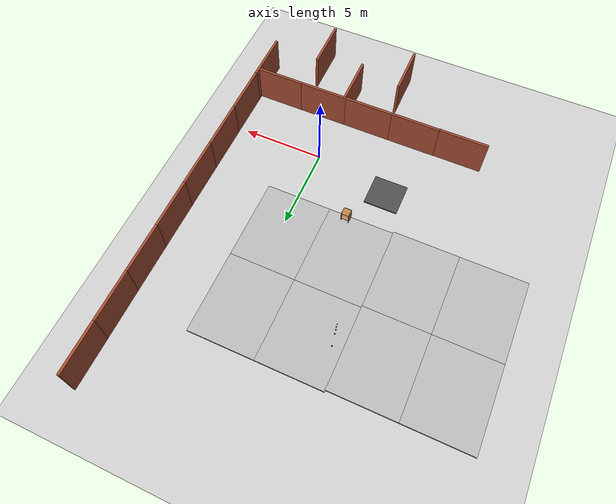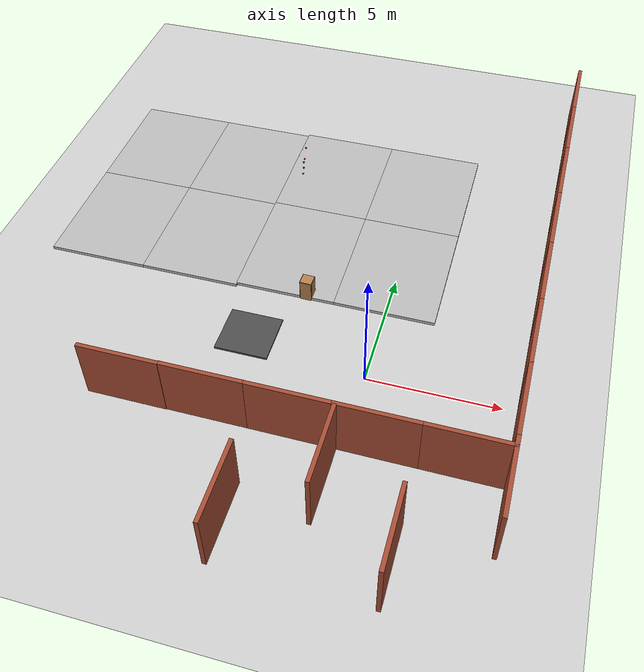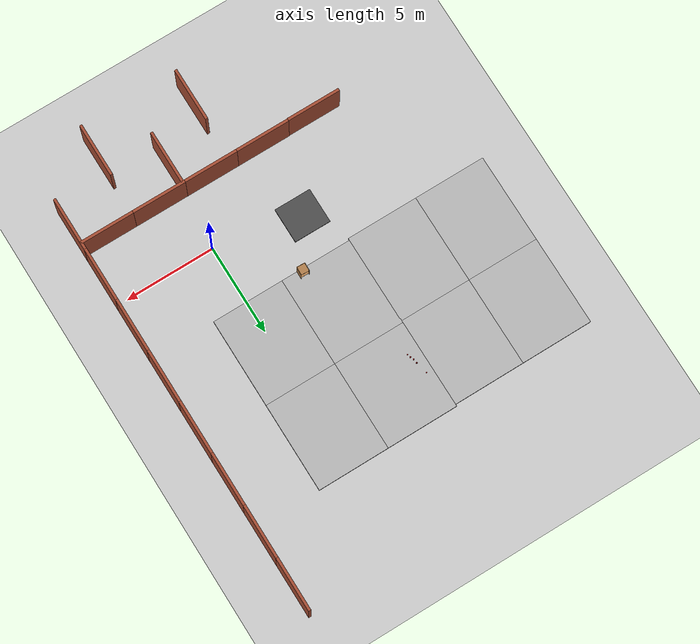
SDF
<sdf version="1.6">
 <world name="default">
  <scene>
   <sky><clouds><speed>5</speed></clouds></sky>
   <ambient>0.4 0.4 0.4 1</ambient>
   <background>0.7 0.7 0.7 1</background>
   <shadows>1</shadows>
  </scene>
  <light name="sun" type="directional">
   <pose>0 0 10 0 -0 0</pose>
   <diffuse>0.8 0.8 0.8 1</diffuse>
   <specular>0.2 0.2 0.2 1</specular>
   <attenuation>
    <range>1000</range>
    <constant>0.9</constant>
    <linear>0.01</linear>
    <quadratic>0.001</quadratic>
   </attenuation>
   <direction>-0.5 0.1 -0.9</direction>
  </light>
  <model name="ground_plane">
   <static>1</static>
   <link name="link">
    <collision name="collision">
     <geometry><plane><normal>0 0 1</normal><size>100 100</size></plane></geometry>
     <surface><friction><ode><mu>100</mu><mu2>50</mu2></ode></friction></surface>
    </collision>
    <visual name="visual">
     <cast_shadows>0</cast_shadows>
     <geometry><plane><normal>0 0 1</normal><size>100 100</size></plane></geometry>
     <material>
      <script><uri>file://media/materials/scripts/gazebo.material</uri><name>Gazebo/Grey</name></script>
     </material>
    </visual>
   </link>
  </model>
  <gravity>0 0 -9.8</gravity>
  <magnetic_field>6e-06 2.3e-05 -4.2e-05</magnetic_field>
  <atmosphere type="adiabatic"/>
  <physics name="default_physics" default="0" type="ode">
   <max_step_size>0.01</max_step_size>
   <real_time_factor>1</real_time_factor>
   <real_time_update_rate>100</real_time_update_rate>
  </physics>
  <scene><ambient>0.4 0.4 0.4 1</ambient><background>0.7 0.7 0.7 1</background><shadows>1</shadows></scene>
  <spherical_coordinates>
   <surface_model>EARTH_WGS84</surface_model>
   <latitude_deg>0</latitude_deg>
   <longitude_deg>0</longitude_deg>
   <elevation>0</elevation>
   <heading_deg>0</heading_deg>
  </spherical_coordinates>
  <model name="wall_brick_3m">
   <pose>2.53536 -6.79833 0 0 -0 1.57</pose>
   <link name="Wall_2">
    <collision name="Wall_2_Collision">
     <geometry><box><size>3 0.15 2.5</size></box></geometry>
     <pose>0 0 1.25 0 -0 0</pose>
    </collision>
    <visual name="Wall_2_Visual">
     <pose>0 0 1.25 0 -0 0</pose>
     <geometry><box><size>3 0.15 2.5</size></box></geometry>
     <material>
      <script><uri>file://media/materials/scripts/gazebo.material</uri><name>Gazebo/Bricks</name></script>
      <ambient>1 1 1 1</ambient>
     </material>
     <meta><layer>0</layer></meta>
    </visual>
   </link>
   <static>1</static>
  </model>
  <model name="wall_brick_3m_clone">
   <pose>-0.265232 -4.62667 0 0 -0 1.57</pose>
   <link name="Wall_2">
    <collision name="Wall_2_Collision">
     <geometry><box><size>3 0.15 2.5</size></box></geometry>
     <pose>0 0 1.25 0 -0 0</pose>
    </collision>
    <visual name="Wall_2_Visual">
     <pose>0 0 1.25 0 -0 0</pose>
     <geometry><box><size>3 0.15 2.5</size></box></geometry>
     <material>
      <script><uri>file://media/materials/scripts/gazebo.material</uri><name>Gazebo/Bricks</name></script>
      <ambient>1 1 1 1</ambient>
     </material>
     <meta><layer>0</layer></meta>
    </visual>
   </link>
   <static>1</static>
  </model>
  <model name="wall_brick_3m_clone_clone">
   <pose>-2.96784 -6.78032 0 0 -0 1.57</pose>
   <link name="Wall_2">
    <collision name="Wall_2_Collision">
     <geometry><box><size>3 0.15 2.5</size></box></geometry>
     <pose>0 0 1.25 0 -0 0</pose>
    </collision>
    <visual name="Wall_2_Visual">
     <pose>0 0 1.25 0 -0 0</pose>
     <geometry><box><size>3 0.15 2.5</size></box></geometry>
     <material>
      <script><uri>file://media/materials/scripts/gazebo.material</uri><name>Gazebo/Bricks</name></script>
      <ambient>1 1 1 1</ambient>
     </material>
     <meta><layer>0</layer></meta>
    </visual>
   </link>
   <static>1</static>
  </model>
  <model name="wall_brick_3m_clone_0">
   <pose>5.57817 -4.2114 0 0 -0 1.57</pose>
   <link name="Wall_2">
    <collision name="Wall_2_Collision">
     <geometry><box><size>3 0.15 2.5</size></box></geometry>
     <pose>0 0 1.25 0 -0 0</pose>
    </collision>
    <visual name="Wall_2_Visual">
     <pose>0 0 1.25 0 -0 0</pose>
     <geometry><box><size>3 0.15 2.5</size></box></geometry>
     <material>
      <script><uri>file://media/materials/scripts/gazebo.material</uri><name>Gazebo/Bricks</name></script>
      <ambient>1 1 1 1</ambient>
     </material>
     <meta><layer>0</layer></meta>
    </visual>
   </link>
   <static>1</static>
  </model>
  <model name="wall_brick_3m_clone_1">
   <pose>4.12513 -3.1 0 0 -0 0</pose>
   <link name="Wall_2">
    <collision name="Wall_2_Collision">
     <geometry><box><size>3 0.15 2.5</size></box></geometry>
     <pose>0 0 1.25 0 -0 0</pose>
    </collision>
    <visual name="Wall_2_Visual">
     <pose>0 0 1.25 0 -0 0</pose>
     <geometry><box><size>3 0.15 2.5</size></box></geometry>
     <material>
      <script><uri>file://media/materials/scripts/gazebo.material</uri><name>Gazebo/Bricks</name></script>
      <ambient>1 1 1 1</ambient>
     </material>
     <meta><layer>0</layer></meta>
    </visual>
   </link>
   <static>1</static>
  </model>
  <model name="wall_brick_3m_clone_1_clone">
   <pose>1.12513 -3.1 0 0 -0 0</pose>
   <link name="Wall_2">
    <collision name="Wall_2_Collision">
     <geometry><box><size>3 0.15 2.5</size></box></geometry>
     <pose>0 0 1.25 0 -0 0</pose>
    </collision>
    <visual name="Wall_2_Visual">
     <pose>0 0 1.25 0 -0 0</pose>
     <geometry><box><size>3 0.15 2.5</size></box></geometry>
     <material>
      <script><uri>file://media/materials/scripts/gazebo.material</uri><name>Gazebo/Bricks</name></script>
      <ambient>1 1 1 1</ambient>
     </material>
     <meta><layer>0</layer></meta>
    </visual>
   </link>
   <static>1</static>
  </model>
  <model name="wall_brick_3m_clone_1_clone_0">
   <pose>-1.87487 -3.1 0 0 -0 0</pose>
   <link name="Wall_2">
    <collision name="Wall_2_Collision">
     <geometry><box><size>3 0.15 2.5</size></box></geometry>
     <pose>0 0 1.25 0 -0 0</pose>
    </collision>
    <visual name="Wall_2_Visual">
     <pose>0 0 1.25 0 -0 0</pose>
     <geometry><box><size>3 0.15 2.5</size></box></geometry>
     <material>
      <script><uri>file://media/materials/scripts/gazebo.material</uri><name>Gazebo/Bricks</name></script>
      <ambient>1 1 1 1</ambient>
     </material>
     <meta><layer>0</layer></meta>
    </visual>
   </link>
   <static>1</static>
  </model>
  <model name="wall_brick_3m_clone_1_clone_1">
   <pose>-4.87487 -3.1 0 0 -0 0</pose>
   <link name="Wall_2">
    <collision name="Wall_2_Collision">
     <geometry><box><size>3 0.15 2.5</size></box></geometry>
     <pose>0 0 1.25 0 -0 0</pose>
    </collision>
    <visual name="Wall_2_Visual">
     <pose>0 0 1.25 0 -0 0</pose>
     <geometry><box><size>3 0.15 2.5</size></box></geometry>
     <material>
      <script><uri>file://media/materials/scripts/gazebo.material</uri><name>Gazebo/Bricks</name></script>
      <ambient>1 1 1 1</ambient>
     </material>
     <meta><layer>0</layer></meta>
    </visual>
   </link>
   <static>1</static>
  </model>
  <model name="wall_brick_3m_clone_1_clone_1_clone">
   <pose>-7.87487 -3.11682 0 0 -0 0</pose>
   <link name="Wall_2">
    <collision name="Wall_2_Collision">
     <geometry><box><size>3 0.15 2.5</size></box></geometry>
     <pose>0 0 1.25 0 -0 0</pose>
    </collision>
    <visual name="Wall_2_Visual">
     <pose>0 0 1.25 0 -0 0</pose>
     <geometry><box><size>3 0.15 2.5</size></box></geometry>
     <material>
      <script><uri>file://media/materials/scripts/gazebo.material</uri><name>Gazebo/Bricks</name></script>
      <ambient>1 1 1 1</ambient>
     </material>
     <meta><layer>0</layer></meta>
    </visual>
   </link>
   <static>1</static>
  </model>
  <model name="wall_brick_3m_clone_0_clone">
   <pose>5.57817 -1.21128 0 0 -0 1.57</pose>
   <link name="Wall_2">
    <collision name="Wall_2_Collision">
     <geometry><box><size>3 0.15 2.5</size></box></geometry>
     <pose>0 0 1.25 0 -0 0</pose>
    </collision>
    <visual name="Wall_2_Visual">
     <pose>0 0 1.25 0 -0 0</pose>
     <geometry><box><size>3 0.15 2.5</size></box></geometry>
     <material>
      <script><uri>file://media/materials/scripts/gazebo.material</uri><name>Gazebo/Bricks</name></script>
      <ambient>1 1 1 1</ambient>
     </material>
     <meta><layer>0</layer></meta>
    </visual>
   </link>
   <static>1</static>
  </model>
  <model name="wall_brick_3m_clone_0_clone_clone">
   <pose>5.57817 1.78884 0 0 -0 1.57</pose>
   <link name="Wall_2">
    <collision name="Wall_2_Collision">
     <geometry><box><size>3 0.15 2.5</size></box></geometry>
     <pose>0 0 1.25 0 -0 0</pose>
    </collision>
    <visual name="Wall_2_Visual">
     <pose>0 0 1.25 0 -0 0</pose>
     <geometry><box><size>3 0.15 2.5</size></box></geometry>
     <material>
      <script><uri>file://media/materials/scripts/gazebo.material</uri><name>Gazebo/Bricks</name></script>
      <ambient>1 1 1 1</ambient>
     </material>
     <meta><layer>0</layer></meta>
    </visual>
   </link>
   <static>1</static>
  </model>
  <model name="wall_brick_3m_clone_0_clone_clone_0">
   <pose>5.57817 4.78896 0 0 -0 1.57</pose>
   <link name="Wall_2">
    <collision name="Wall_2_Collision">
     <geometry><box><size>3 0.15 2.5</size></box></geometry>
     <pose>0 0 1.25 0 -0 0</pose>
    </collision>
    <visual name="Wall_2_Visual">
     <pose>0 0 1.25 0 -0 0</pose>
     <geometry><box><size>3 0.15 2.5</size></box></geometry>
     <material>
      <script><uri>file://media/materials/scripts/gazebo.material</uri><name>Gazebo/Bricks</name></script>
      <ambient>1 1 1 1</ambient>
     </material>
     <meta><layer>0</layer></meta>
    </visual>
   </link>
   <static>1</static>
  </model>
  <model name="wall_brick_3m_clone_0_clone_clone_0_clone">
   <pose>5.57817 7.78908 0 0 -0 1.57</pose>
   <link name="Wall_2">
    <collision name="Wall_2_Collision">
     <geometry><box><size>3 0.15 2.5</size></box></geometry>
     <pose>0 0 1.25 0 -0 0</pose>
    </collision>
    <visual name="Wall_2_Visual">
     <pose>0 0 1.25 0 -0 0</pose>
     <geometry><box><size>3 0.15 2.5</size></box></geometry>
     <material>
      <script><uri>file://media/materials/scripts/gazebo.material</uri><name>Gazebo/Bricks</name></script>
      <ambient>1 1 1 1</ambient>
     </material>
     <meta><layer>0</layer></meta>
    </visual>
   </link>
   <static>1</static>
  </model>
  <model name="wall_brick_3m_clone_0_clone_clone_0_clone_clone">
   <pose>5.57817 10.7892 0 0 -0 1.57</pose>
   <link name="Wall_2">
    <collision name="Wall_2_Collision">
     <geometry><box><size>3 0.15 2.5</size></box></geometry>
     <pose>0 0 1.25 0 -0 0</pose>
    </collision>
    <visual name="Wall_2_Visual">
     <pose>0 0 1.25 0 -0 0</pose>
     <geometry><box><size>3 0.15 2.5</size></box></geometry>
     <material>
      <script><uri>file://media/materials/scripts/gazebo.material</uri><name>Gazebo/Bricks</name></script>
      <ambient>1 1 1 1</ambient>
     </material>
     <meta><layer>0</layer></meta>
    </visual>
   </link>
   <static>1</static>
  </model>
  <model name="wall_brick_3m_clone_0_clone_clone_0_clone_clone_0">
   <pose>5.57817 13.7893 0 0 -0 1.57</pose>
   <link name="Wall_2">
    <collision name="Wall_2_Collision">
     <geometry><box><size>3 0.15 2.5</size></box></geometry>
     <pose>0 0 1.25 0 -0 0</pose>
    </collision>
    <visual name="Wall_2_Visual">
     <pose>0 0 1.25 0 -0 0</pose>
     <geometry><box><size>3 0.15 2.5</size></box></geometry>
     <material>
      <script><uri>file://media/materials/scripts/gazebo.material</uri><name>Gazebo/Bricks</name></script>
      <ambient>1 1 1 1</ambient>
     </material>
     <meta><layer>0</layer></meta>
    </visual>
   </link>
   <static>1</static>
  </model>
  <model name="wall_brick_3m_clone_0_clone_clone_0_clone_clone_0_clone">
   <pose>5.57817 16.7894 0 0 -0 1.57</pose>
   <link name="Wall_2">
    <collision name="Wall_2_Collision">
     <geometry><box><size>3 0.15 2.5</size></box></geometry>
     <pose>0 0 1.25 0 -0 0</pose>
    </collision>
    <visual name="Wall_2_Visual">
     <pose>0 0 1.25 0 -0 0</pose>
     <geometry><box><size>3 0.15 2.5</size></box></geometry>
     <material>
      <script><uri>file://media/materials/scripts/gazebo.material</uri><name>Gazebo/Bricks</name></script>
      <ambient>1 1 1 1</ambient>
     </material>
     <meta><layer>0</layer></meta>
    </visual>
   </link>
   <static>1</static>
  </model>
  <model name="asphalt_plane">
   <static>1</static>
   <link name="link">
    <collision name="collision"><geometry><box><size>2.05625 1.97218 0.1</size></box></geometry></collision>
    <visual name="visual">
     <cast_shadows>0</cast_shadows>
     <geometry><box><size>2.05625 1.97218 0.1</size></box></geometry>
     <material>
      <script>
       <uri>model://asphalt_plane/materials/scripts</uri>
       <uri>model://asphalt_plane/materials/textures</uri>
       <name>vrc/asphalt</name>
      </script>
     </material>
    </visual>
   </link>
   <pose>-4.73912 0.887982 0 0 -0 0</pose>
  </model>
  <model name="mud_box">
   <static>1</static>
   <link name="link">
    <collision name="collision"><geometry><box><size>8 10 0.2</size></box></geometry></collision>
    <visual name="visual_1">
     <pose>-2 2.5 0 0 -0 0</pose>
     <cast_shadows>0</cast_shadows>
     <geometry><box><size>4 5 0.2</size></box></geometry>
     <material>
      <script>
       <uri>model://mud_box/materials/scripts</uri>
       <uri>model://mud_box/materials/textures</uri>
       <name>vrc/mud</name>
      </script>
     </material>
    </visual>
    <visual name="visual_2">
     <pose>2 2.5 0 0 -0 0</pose>
     <cast_shadows>0</cast_shadows>
     <geometry><box><size>4 5 0.2</size></box></geometry>
     <material>
      <script>
       <uri>model://mud_box/materials/scripts</uri>
       <uri>model://mud_box/materials/textures</uri>
       <name>vrc/mud</name>
      </script>
     </material>
    </visual>
    <visual name="visual_3">
     <pose>2 -2.5 0 0 -0 0</pose>
     <cast_shadows>0</cast_shadows>
     <geometry><box><size>4 5 0.2</size></box></geometry>
     <material>
      <script>
       <uri>model://mud_box/materials/scripts</uri>
       <uri>model://mud_box/materials/textures</uri>
       <name>vrc/mud</name>
      </script>
     </material>
    </visual>
    <visual name="visual_4">
     <pose>-2 -2.5 0 0 -0 0</pose>
     <cast_shadows>0</cast_shadows>
     <geometry><box><size>4 5 0.2</size></box></geometry>
     <material>
      <script>
       <uri>model://mud_box/materials/scripts</uri>
       <uri>model://mud_box/materials/textures</uri>
       <name>vrc/mud</name>
      </script>
     </material>
    </visual>
   </link>
   <pose>-2.08423 8.22908 0 0 -0 0</pose>
  </model>
  <model name="mud_box_clone">
   <static>1</static>
   <link name="link">
    <collision name="collision"><geometry><box><size>8 10 0.2</size></box></geometry></collision>
    <visual name="visual_1">
     <pose>-2 2.5 0 0 -0 0</pose>
     <cast_shadows>0</cast_shadows>
     <geometry><box><size>4 5 0.2</size></box></geometry>
     <material>
      <script>
       <uri>model://mud_box/materials/scripts</uri>
       <uri>model://mud_box/materials/textures</uri>
       <name>vrc/mud</name>
      </script>
     </material>
    </visual>
    <visual name="visual_2">
     <pose>2 2.5 0 0 -0 0</pose>
     <cast_shadows>0</cast_shadows>
     <geometry><box><size>4 5 0.2</size></box></geometry>
     <material>
      <script>
       <uri>model://mud_box/materials/scripts</uri>
       <uri>model://mud_box/materials/textures</uri>
       <name>vrc/mud</name>
      </script>
     </material>
    </visual>
    <visual name="visual_3">
     <pose>2 -2.5 0 0 -0 0</pose>
     <cast_shadows>0</cast_shadows>
     <geometry><box><size>4 5 0.2</size></box></geometry>
     <material>
      <script>
       <uri>model://mud_box/materials/scripts</uri>
       <uri>model://mud_box/materials/textures</uri>
       <name>vrc/mud</name>
      </script>
     </material>
    </visual>
    <visual name="visual_4">
     <pose>-2 -2.5 0 0 -0 0</pose>
     <cast_shadows>0</cast_shadows>
     <geometry><box><size>4 5 0.2</size></box></geometry>
     <material>
      <script>
       <uri>model://mud_box/materials/scripts</uri>
       <uri>model://mud_box/materials/textures</uri>
       <name>vrc/mud</name>
      </script>
     </material>
    </visual>
   </link>
   <pose>-10.0537 8.12309 0 0 -0 0</pose>
  </model>
  <model name="marble_1_5cm">
   <link name="link">
    <pose>0 0 0.0075 0 -0 0</pose>
    <inertial>
     <mass>0.0062</mass>
     <inertia>
      <ixx>1.395e-07</ixx>
      <ixy>0</ixy>
      <ixz>0</ixz>
      <iyy>1.395e-07</iyy>
      <iyz>0</iyz>
      <izz>1.395e-07</izz>
     </inertia>
    </inertial>
    <collision name="collision">
     <geometry><sphere><radius>0.0075</radius></sphere></geometry>
     <surface>
      <contact>
       <poissons_ratio>0.22</poissons_ratio>
       <elastic_modulus>5.1e+10</elastic_modulus>
       <ode><kp>100000</kp><kd>100</kd><max_vel>100</max_vel><min_depth>0.001</min_depth></ode>
      </contact>
      <friction>
       <torsional>
        <coefficient>1</coefficient>
        <use_patch_radius>0</use_patch_radius>
        <surface_radius>0.01</surface_radius>
       </torsional>
      </friction>
     </surface>
    </collision>
    <visual name="visual">
     <geometry><sphere><radius>0.0075</radius></sphere></geometry>
     <material>
      <script><uri>file://media/materials/scripts/gazebo.material</uri><name>Gazebo/Blue</name></script>
     </material>
    </visual>
    <velocity_decay><linear>0</linear><angular>0.005</angular></velocity_decay>
   </link>
   <pose>5.91825 10.5896 -0.001001 0 -0 0</pose>
  </model>
  <model name="cabinet">
   <static>1</static>
   <link name="cabinet_bottom_plate">
    <inertial>
     <pose>0 0 -1 0 -0 0</pose>
     <inertia><ixx>2.05</ixx><ixy>0</ixy><ixz>0</ixz><iyy>2.05</iyy><iyz>0</iyz><izz>2.05</izz></inertia>
     <mass>25</mass>
    </inertial>
    <collision name="cabinet_bottom_plate_geom">
     <pose>0 0 0.01 0 -0 0</pose>
     <geometry><box><size>0.45 0.45 0.02</size></box></geometry>
    </collision>
    <visual name="cabinet_bottom_plate_geom_visual">
     <pose>0 0 0.01 0 -0 0</pose>
     <geometry><box><size>0.45 0.45 0.02</size></box></geometry>
     <material>
      <script><uri>file://media/materials/scripts/gazebo.material</uri><name>Gazebo/Wood</name></script>
     </material>
    </visual>
    <collision name="cabinet_bottom_plate_geom_cabinet_back_plate">
     <pose>0.235 0 0.51 0 -0 0</pose>
     <geometry><box><size>0.02 0.45 1.02</size></box></geometry>
    </collision>
    <visual name="cabinet_bottom_plate_geom_cabinet_back_plate_visual">
     <pose>0.235 0 0.51 0 -0 0</pose>
     <geometry><box><size>0.02 0.45 1.02</size></box></geometry>
     <material>
      <script><uri>file://media/materials/scripts/gazebo.material</uri><name>Gazebo/Wood</name></script>
     </material>
    </visual>
    <collision name="cabinet_bottom_plate_geom_cabinet_left_plate">
     <pose>0 0.235 0.51 0 -0 0</pose>
     <geometry><box><size>0.45 0.02 1.02</size></box></geometry>
    </collision>
    <visual name="cabinet_bottom_plate_geom_cabinet_left_plate_visual">
     <pose>0 0.235 0.51 0 -0 0</pose>
     <geometry><box><size>0.45 0.02 1.02</size></box></geometry>
     <material>
      <script><uri>file://media/materials/scripts/gazebo.material</uri><name>Gazebo/Wood</name></script>
     </material>
    </visual>
    <collision name="cabinet_bottom_plate_geom_cabinet_middle_plate">
     <pose>0 0 0.51 0 -0 0</pose>
     <geometry><box><size>0.45 0.45 0.02</size></box></geometry>
    </collision>
    <visual name="cabinet_bottom_plate_geom_cabinet_middle_plate_visual">
     <pose>0 0 0.51 0 -0 0</pose>
     <geometry><box><size>0.45 0.45 0.02</size></box></geometry>
     <material>
      <script><uri>file://media/materials/scripts/gazebo.material</uri><name>Gazebo/Wood</name></script>
     </material>
    </visual>
    <collision name="cabinet_bottom_plate_geom_cabinet_right_plate">
     <pose>0 -0.235 0.51 0 -0 0</pose>
     <geometry><box><size>0.45 0.02 1.02</size></box></geometry>
    </collision>
    <visual name="cabinet_bottom_plate_geom_cabinet_right_plate_visual">
     <pose>0 -0.235 0.51 0 -0 0</pose>
     <geometry><box><size>0.45 0.02 1.02</size></box></geometry>
     <material>
      <script><uri>file://media/materials/scripts/gazebo.material</uri><name>Gazebo/Wood</name></script>
     </material>
    </visual>
    <collision name="cabinet_bottom_plate_geom_cabinet_top_plate">
     <pose>0 0 1.01 0 -0 0</pose>
     <geometry><box><size>0.45 0.45 0.02</size></box></geometry>
    </collision>
    <visual name="cabinet_bottom_plate_geom_cabinet_top_plate_visual">
     <pose>0 0 1.01 0 -0 0</pose>
     <geometry><box><size>0.45 0.45 0.02</size></box></geometry>
     <material>
      <script><uri>file://media/materials/scripts/gazebo.material</uri><name>Gazebo/Wood</name></script>
     </material>
    </visual>
   </link>
   <pose>-3.20014 3.44291 -0.160223 0 0 -1.59865</pose>
  </model>
  <model name="ball_bearing">
   <link name="link">
    <pose>0 0 0.003 0 -0 0</pose>
    <inertial>
     <mass>0.0011</mass>
     <inertia>
      <ixx>3.96e-09</ixx>
      <ixy>0</ixy>
      <ixz>0</ixz>
      <iyy>3.96e-09</iyy>
      <iyz>0</iyz>
      <izz>3.96e-09</izz>
     </inertia>
    </inertial>
    <collision name="collision">
     <geometry><sphere><radius>0.003</radius></sphere></geometry>
     <surface>
      <contact>
       <poissons_ratio>0.305</poissons_ratio>
       <elastic_modulus>2e+11</elastic_modulus>
       <ode><kp>100000</kp><kd>100</kd><max_vel>100</max_vel><min_depth>0.001</min_depth></ode>
      </contact>
      <friction>
       <torsional>
        <coefficient>1</coefficient>
        <use_patch_radius>0</use_patch_radius>
        <surface_radius>0.01</surface_radius>
       </torsional>
      </friction>
     </surface>
    </collision>
    <visual name="visual">
     <geometry><sphere><radius>0.003</radius></sphere></geometry>
     <material>
      <script><uri>file://media/materials/scripts/gazebo.material</uri><name>Gazebo/Grey</name></script>
     </material>
    </visual>
    <velocity_decay><linear>0</linear><angular>0.005</angular></velocity_decay>
   </link>
   <pose>-3.36635 3.54841 0.358777 0 -0 0</pose>
  </model>
  <model name="marble_1_5cm_0">
   <link name="link">
    <pose>0 0 0.0075 0 -0 0</pose>
    <inertial>
     <mass>0.0062</mass>
     <inertia>
      <ixx>1.395e-07</ixx>
      <ixy>0</ixy>
      <ixz>0</ixz>
      <iyy>1.395e-07</iyy>
      <iyz>0</iyz>
      <izz>1.395e-07</izz>
     </inertia>
    </inertial>
    <collision name="collision">
     <geometry><sphere><radius>0.0075</radius></sphere></geometry>
     <surface>
      <contact>
       <poissons_ratio>0.22</poissons_ratio>
       <elastic_modulus>5.1e+10</elastic_modulus>
       <ode><kp>100000</kp><kd>100</kd><max_vel>100</max_vel><min_depth>0.001</min_depth></ode>
      </contact>
      <friction>
       <torsional>
        <coefficient>1</coefficient>
        <use_patch_radius>0</use_patch_radius>
        <surface_radius>0.01</surface_radius>
       </torsional>
      </friction>
     </surface>
    </collision>
    <visual name="visual">
     <geometry><sphere><radius>0.0075</radius></sphere></geometry>
     <material>
      <script><uri>file://media/materials/scripts/gazebo.material</uri><name>Gazebo/Blue</name></script>
     </material>
    </visual>
    <velocity_decay><linear>0</linear><angular>0.005</angular></velocity_decay>
   </link>
   <pose>-3.31908 3.6346 0.358776 0 -0 0</pose>
  </model>
  <model name="cricket_ball_nograv">
   <link name="cricket_ball_nograv::link">
    <pose>0 0 0.0375 0 -0 0</pose>
    <inertial>
     <mass>0.1467</mass>
     <inertia>
      <ixx>8.252e-05</ixx>
      <ixy>0</ixy>
      <ixz>0</ixz>
      <iyy>8.252e-05</iyy>
      <iyz>0</iyz>
      <izz>8.252e-05</izz>
     </inertia>
    </inertial>
    <velocity_decay><linear>0</linear><angular>0.005</angular></velocity_decay>
    <gravity>0</gravity>
    <visual name="visual">
     <geometry><sphere><radius>0.0375</radius></sphere></geometry>
     <material>
      <script><uri>file://media/materials/scripts/gazebo.material</uri><name>Gazebo/Red</name></script>
      <shader type="pixel"><normal_map>__default__</normal_map></shader>
      <ambient>1 0 0 1</ambient>
      <diffuse>1 0 0 1</diffuse>
      <specular>0.1 0.1 0.1 1</specular>
      <emissive>0 0 0 1</emissive>
     </material>
    </visual>
    <collision name="collision">
     <geometry><sphere><radius>0.0375</radius></sphere></geometry>
     <surface>
      <friction>
       <ode><mu>1</mu><mu2>1</mu2><fdir1>0 0 0</fdir1><slip1>0</slip1><slip2>0</slip2></ode>
       <torsional>
        <coefficient>1</coefficient>
        <patch_radius>0</patch_radius>
        <surface_radius>0.01</surface_radius>
        <use_patch_radius>0</use_patch_radius>
        <ode><slip>0</slip></ode>
       </torsional>
      </friction>
      <bounce><restitution_coefficient>0</restitution_coefficient><threshold>1e+06</threshold></bounce>
      <contact>
       <collide_without_contact>0</collide_without_contact>
       <collide_without_contact_bitmask>1</collide_without_contact_bitmask>
       <collide_bitmask>1</collide_bitmask>
       <ode>
        <soft_cfm>0</soft_cfm>
        <soft_erp>0.2</soft_erp>
        <kp>100000</kp>
        <kd>100</kd>
        <max_vel>100</max_vel>
        <min_depth>0.001</min_depth>
       </ode>
       <bullet>
        <split_impulse>1</split_impulse>
        <split_impulse_penetration_threshold>-0.01</split_impulse_penetration_threshold>
        <soft_cfm>0</soft_cfm>
        <soft_erp>0.2</soft_erp>
        <kp>100000</kp>
        <kd>100</kd>
       </bullet>
      </contact>
     </surface>
    </collision>
   </link>
   <static>0</static>
   <pose>-5.59258 11.1557 0.940957 0 -0 0</pose>
  </model>
  <model name="cricket_ball_static">
   <link name="cricket_ball_static::link">
    <pose>0.008641 0.008643 0.048313 0 -0 0</pose>
    <inertial>
     <mass>0.1467</mass>
     <inertia>
      <ixx>8.252e-05</ixx>
      <ixy>0</ixy>
      <ixz>0</ixz>
      <iyy>8.252e-05</iyy>
      <iyz>0</iyz>
      <izz>8.252e-05</izz>
     </inertia>
    </inertial>
    <velocity_decay><linear>0</linear><angular>0.005</angular></velocity_decay>
    <visual name="visual">
     <geometry><sphere><radius>0.0375</radius></sphere></geometry>
     <material>
      <script><uri>file://media/materials/scripts/gazebo.material</uri><name>Gazebo/Red</name></script>
      <shader type="pixel"><normal_map>__default__</normal_map></shader>
      <ambient>1 0 0 1</ambient>
      <diffuse>1 0 0 1</diffuse>
      <specular>0.1 0.1 0.1 1</specular>
      <emissive>0 0 0 1</emissive>
     </material>
    </visual>
    <collision name="collision">
     <geometry><sphere><radius>0.0375</radius></sphere></geometry>
     <surface>
      <friction>
       <ode><mu>1</mu><mu2>1</mu2><fdir1>0 0 0</fdir1><slip1>0</slip1><slip2>0</slip2></ode>
       <torsional>
        <coefficient>1</coefficient>
        <patch_radius>0</patch_radius>
        <surface_radius>0.01</surface_radius>
        <use_patch_radius>0</use_patch_radius>
        <ode><slip>0</slip></ode>
       </torsional>
      </friction>
      <bounce><restitution_coefficient>0</restitution_coefficient><threshold>1e+06</threshold></bounce>
      <contact>
       <collide_without_contact>1</collide_without_contact>
       <collide_without_contact_bitmask>1</collide_without_contact_bitmask>
       <collide_bitmask>1</collide_bitmask>
       <ode>
        <soft_cfm>0</soft_cfm>
        <soft_erp>0.2</soft_erp>
        <kp>100000</kp>
        <kd>100</kd>
        <max_vel>100</max_vel>
        <min_depth>0.001</min_depth>
       </ode>
       <bullet>
        <split_impulse>1</split_impulse>
        <split_impulse_penetration_threshold>-0.01</split_impulse_penetration_threshold>
        <soft_cfm>0</soft_cfm>
        <soft_erp>0.2</soft_erp>
        <kp>100000</kp>
        <kd>100</kd>
       </bullet>
      </contact>
     </surface>
    </collision>
   </link>
   <static>0</static>
   <pose>-5.42705 10.2337 0.85623 0 -0 0</pose>
  </model>
  <model name="cricket_ball_static_clone">
   <link name="cricket_ball_static_clone::cricket_ball_static::link">
    <pose>0.008641 0.008643 0.048313 0 -0 0</pose>
    <inertial>
     <mass>0.1467</mass>
     <inertia>
      <ixx>8.252e-05</ixx>
      <ixy>0</ixy>
      <ixz>0</ixz>
      <iyy>8.252e-05</iyy>
      <iyz>0</iyz>
      <izz>8.252e-05</izz>
     </inertia>
    </inertial>
    <velocity_decay><linear>0</linear><angular>0.005</angular></velocity_decay>
    <visual name="visual">
     <geometry><sphere><radius>0.0375</radius></sphere></geometry>
     <material>
      <script><uri>file://media/materials/scripts/gazebo.material</uri><name>Gazebo/Red</name></script>
      <shader type="pixel"><normal_map>__default__</normal_map></shader>
      <ambient>1 0 0 1</ambient>
      <diffuse>1 0 0 1</diffuse>
      <specular>0.1 0.1 0.1 1</specular>
      <emissive>0 0 0 1</emissive>
     </material>
    </visual>
    <collision name="collision">
     <geometry><sphere><radius>0.0375</radius></sphere></geometry>
     <surface>
      <friction>
       <ode><mu>1</mu><mu2>1</mu2><fdir1>0 0 0</fdir1><slip1>0</slip1><slip2>0</slip2></ode>
       <torsional>
        <coefficient>1</coefficient>
        <patch_radius>0</patch_radius>
        <surface_radius>0.01</surface_radius>
        <use_patch_radius>0</use_patch_radius>
        <ode><slip>0</slip></ode>
       </torsional>
      </friction>
      <bounce><restitution_coefficient>0</restitution_coefficient><threshold>1e+06</threshold></bounce>
      <contact>
       <collide_without_contact>1</collide_without_contact>
       <collide_without_contact_bitmask>1</collide_without_contact_bitmask>
       <collide_bitmask>1</collide_bitmask>
       <ode>
        <soft_cfm>0</soft_cfm>
        <soft_erp>0.2</soft_erp>
        <kp>100000</kp>
        <kd>100</kd>
        <max_vel>100</max_vel>
        <min_depth>0.001</min_depth>
       </ode>
       <bullet>
        <split_impulse>1</split_impulse>
        <split_impulse_penetration_threshold>-0.01</split_impulse_penetration_threshold>
        <soft_cfm>0</soft_cfm>
        <soft_erp>0.2</soft_erp>
        <kp>100000</kp>
        <kd>100</kd>
       </bullet>
      </contact>
     </surface>
    </collision>
   </link>
   <static>0</static>
   <pose>-5.3701 10.0284 0.715094 0 -0 0</pose>
  </model>
  <model name="cricket_ball_static_clone_0">
   <link name="cricket_ball_static_clone_0::cricket_ball_static::link">
    <pose>0.008641 0.008643 0.048313 0 -0 0</pose>
    <inertial>
     <mass>0.1467</mass>
     <inertia>
      <ixx>8.252e-05</ixx>
      <ixy>0</ixy>
      <ixz>0</ixz>
      <iyy>8.252e-05</iyy>
      <iyz>0</iyz>
      <izz>8.252e-05</izz>
     </inertia>
    </inertial>
    <velocity_decay><linear>0</linear><angular>0.005</angular></velocity_decay>
    <visual name="visual">
     <geometry><sphere><radius>0.0375</radius></sphere></geometry>
     <material>
      <script><uri>file://media/materials/scripts/gazebo.material</uri><name>Gazebo/Red</name></script>
      <shader type="pixel"><normal_map>__default__</normal_map></shader>
      <ambient>1 0 0 1</ambient>
      <diffuse>1 0 0 1</diffuse>
      <specular>0.1 0.1 0.1 1</specular>
      <emissive>0 0 0 1</emissive>
     </material>
    </visual>
    <collision name="collision">
     <geometry><sphere><radius>0.0375</radius></sphere></geometry>
     <surface>
      <friction>
       <ode><mu>1</mu><mu2>1</mu2><fdir1>0 0 0</fdir1><slip1>0</slip1><slip2>0</slip2></ode>
       <torsional>
        <coefficient>1</coefficient>
        <patch_radius>0</patch_radius>
        <surface_radius>0.01</surface_radius>
        <use_patch_radius>0</use_patch_radius>
        <ode><slip>0</slip></ode>
       </torsional>
      </friction>
      <bounce><restitution_coefficient>0</restitution_coefficient><threshold>1e+06</threshold></bounce>
      <contact>
       <collide_without_contact>1</collide_without_contact>
       <collide_without_contact_bitmask>1</collide_without_contact_bitmask>
       <collide_bitmask>1</collide_bitmask>
       <ode>
        <soft_cfm>0</soft_cfm>
        <soft_erp>0.2</soft_erp>
        <kp>100000</kp>
        <kd>100</kd>
        <max_vel>100</max_vel>
        <min_depth>0.001</min_depth>
       </ode>
       <bullet>
        <split_impulse>1</split_impulse>
        <split_impulse_penetration_threshold>-0.01</split_impulse_penetration_threshold>
        <soft_cfm>0</soft_cfm>
        <soft_erp>0.2</soft_erp>
        <kp>100000</kp>
        <kd>100</kd>
       </bullet>
      </contact>
     </surface>
    </collision>
   </link>
   <static>0</static>
   <pose>-5.45871 10.463 0.85623 0 -0 0</pose>
  </model>
  <model name="cricket_ball_static_clone_1">
   <link name="cricket_ball_static_clone_1::cricket_ball_static::link">
    <pose>0.008641 0.008643 0.048313 0 -0 0</pose>
    <inertial>
     <mass>0.1467</mass>
     <inertia>
      <ixx>8.252e-05</ixx>
      <ixy>0</ixy>
      <ixz>0</ixz>
      <iyy>8.252e-05</iyy>
      <iyz>0</iyz>
      <izz>8.252e-05</izz>
     </inertia>
    </inertial>
    <velocity_decay><linear>0</linear><angular>0.005</angular></velocity_decay>
    <visual name="visual">
     <geometry><sphere><radius>0.0375</radius></sphere></geometry>
     <material>
      <script><uri>file://media/materials/scripts/gazebo.material</uri><name>Gazebo/Red</name></script>
      <shader type="pixel"><normal_map>__default__</normal_map></shader>
      <ambient>1 0 0 1</ambient>
      <diffuse>1 0 0 1</diffuse>
      <specular>0.1 0.1 0.1 1</specular>
      <emissive>0 0 0 1</emissive>
     </material>
    </visual>
    <collision name="collision">
     <geometry><sphere><radius>0.0375</radius></sphere></geometry>
     <surface>
      <friction>
       <ode><mu>1</mu><mu2>1</mu2><fdir1>0 0 0</fdir1><slip1>0</slip1><slip2>0</slip2></ode>
       <torsional>
        <coefficient>1</coefficient>
        <patch_radius>0</patch_radius>
        <surface_radius>0.01</surface_radius>
        <use_patch_radius>0</use_patch_radius>
        <ode><slip>0</slip></ode>
       </torsional>
      </friction>
      <bounce><restitution_coefficient>0</restitution_coefficient><threshold>1e+06</threshold></bounce>
      <contact>
       <collide_without_contact>1</collide_without_contact>
       <collide_without_contact_bitmask>1</collide_without_contact_bitmask>
       <collide_bitmask>1</collide_bitmask>
       <ode>
        <soft_cfm>0</soft_cfm>
        <soft_erp>0.2</soft_erp>
        <kp>100000</kp>
        <kd>100</kd>
        <max_vel>100</max_vel>
        <min_depth>0.001</min_depth>
       </ode>
       <bullet>
        <split_impulse>1</split_impulse>
        <split_impulse_penetration_threshold>-0.01</split_impulse_penetration_threshold>
        <soft_cfm>0</soft_cfm>
        <soft_erp>0.2</soft_erp>
        <kp>100000</kp>
        <kd>100</kd>
       </bullet>
      </contact>
     </surface>
    </collision>
   </link>
   <static>0</static>
   <pose>-5.33448 9.81928 0.562251 0 -0 0</pose>
  </model>
 </world>
</sdf>
